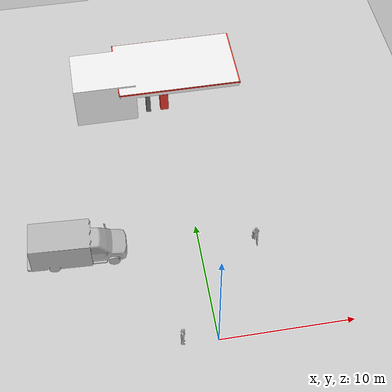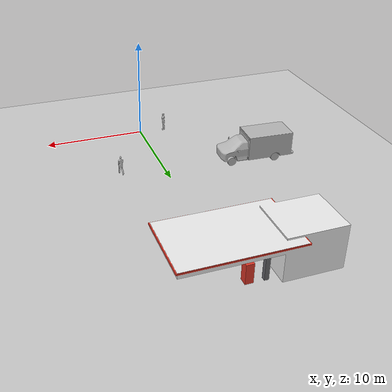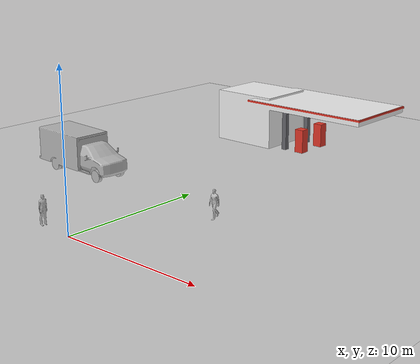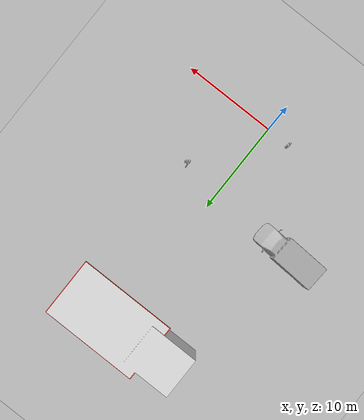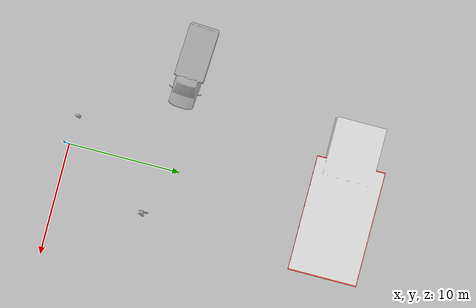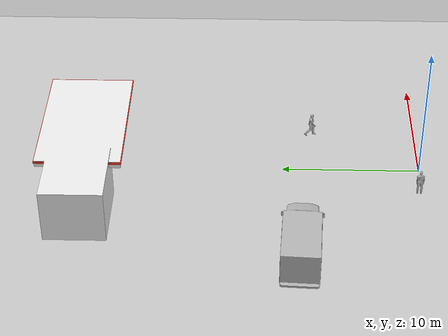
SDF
<sdf version="1.7">
 <world name="default">
  <light name="sun" type="directional">
   <pose>0 0 10 0 -0 0</pose>
   <diffuse>0.8 0.8 0.8 1</diffuse>
   <specular>0.2 0.2 0.2 1</specular>
   <attenuation>
    <range>1000</range>
    <constant>0.9</constant>
    <linear>0.01</linear>
    <quadratic>0.001</quadratic>
   </attenuation>
   <direction>-0.5 0.1 -0.9</direction>
   <spot><inner_angle>0</inner_angle><outer_angle>0</outer_angle><falloff>0</falloff></spot>
  </light>
  <model name="ground_plane">
   <static>1</static>
   <link name="link">
    <collision name="collision">
     <geometry><plane><normal>0 0 1</normal><size>100 100</size></plane></geometry>
     <surface><friction><ode><mu>100</mu><mu2>50</mu2></ode></friction></surface>
    </collision>
    <visual name="visual">
     <cast_shadows>0</cast_shadows>
     <geometry><plane><normal>0 0 1</normal><size>100 100</size></plane></geometry>
     <material>
      <script><uri>file://media/materials/scripts/gazebo.material</uri><name>Gazebo/Grey</name></script>
     </material>
    </visual>
   </link>
  </model>
  <gravity>0 0 -9.8</gravity>
  <magnetic_field>6e-06 2.3e-05 -4.2e-05</magnetic_field>
  <atmosphere type="adiabatic"/>
  <physics type="ode">
   <max_step_size>0.001</max_step_size>
   <real_time_factor>1</real_time_factor>
   <real_time_update_rate>1000</real_time_update_rate>
  </physics>
  <scene><ambient>0.4 0.4 0.4 1</ambient><background>0.7 0.7 0.7 1</background><shadows>1</shadows></scene>
  <audio><device>default</device></audio>
  <spherical_coordinates>
   <surface_model>EARTH_WGS84</surface_model>
   <latitude_deg>0</latitude_deg>
   <longitude_deg>0</longitude_deg>
   <elevation>0</elevation>
   <heading_deg>0</heading_deg>
  </spherical_coordinates>
  <model name="ambulance">
   <static>1</static>
   <link name="link">
    <collision name="collision">
     <geometry>
      <mesh><scale>0.0254 0.0254 0.0254</scale><uri>model://ambulance/meshes/ambulance.obj</uri></mesh>
     </geometry>
    </collision>
    <visual name="visual">
     <geometry>
      <mesh><scale>0.0254 0.0254 0.0254</scale><uri>model://ambulance/meshes/ambulance.obj</uri></mesh>
     </geometry>
    </visual>
   </link>
   <pose>-9.36105 8.81594 0 0 -0 1.51927</pose>
  </model>
  <model name="Gas Station">
   <static>1</static>
   <link name="link">
    <collision name="collision">
     <geometry><mesh><uri>model://gas_station/meshes/gas_station.dae</uri></mesh></geometry>
    </collision>
    <visual name="visual">
     <geometry><mesh><uri>model://gas_station/meshes/gas_station.dae</uri></mesh></geometry>
     <material>
      <script>
       <uri>model://gas_station/materials/scripts</uri>
       <uri>model://gas_station/materials/textures</uri>
       <name>GasStation/Diffuse</name>
      </script>
      <shader type="normal_map_tangent_space"><normal_map>GasStation_Normal.png</normal_map></shader>
     </material>
    </visual>
   </link>
   <pose>-1.77742 24.3166 0 0 -0 0</pose>
  </model>
  <model name="person_walking">
   <link name="link">
    <inertial>
     <pose>0 0 0.95 0 -0 0</pose>
     <mass>80</mass>
     <inertia><ixx>27.82</ixx><ixy>0</ixy><ixz>0</ixz><iyy>24.88</iyy><iyz>0</iyz><izz>4.57</izz></inertia>
    </inertial>
    <collision name="bottom">
     <pose>0 0 0.01 0 -0 0</pose>
     <geometry><box><size>0.35 0.75 0.02</size></box></geometry>
    </collision>
    <collision name="person">
     <pose>0 0 -0.02 0 -0 0</pose>
     <geometry><mesh><uri>model://person_walking/meshes/walking.dae</uri></mesh></geometry>
    </collision>
    <visual name="visual">
     <pose>0 0 -0.02 0 -0 0</pose>
     <geometry><mesh><uri>model://person_walking/meshes/walking.dae</uri></mesh></geometry>
    </visual>
   </link>
   <pose>4.26809 7.81018 -1e-06 2e-06 -1e-06 0.001143</pose>
  </model>
  <model name="person_standing">
   <link name="link">
    <inertial>
     <pose>0 -0.1 0.95 0 -0 0</pose>
     <mass>80</mass>
     <inertia><ixx>24.88</ixx><ixy>0</ixy><ixz>0</ixz><iyy>25.73</iyy><iyz>0</iyz><izz>2.48</izz></inertia>
    </inertial>
    <collision name="bottom">
     <pose>0 -0.1 0.01 0 -0 0</pose>
     <geometry><box><size>0.5 0.35 0.02</size></box></geometry>
    </collision>
    <collision name="person">
     <pose>0 0 0.02 0.04 -0 0</pose>
     <geometry><mesh><uri>model://person_standing/meshes/standing.dae</uri></mesh></geometry>
    </collision>
    <visual name="visual">
     <pose>0 0 0.02 0.04 -0 0</pose>
     <geometry><mesh><uri>model://person_standing/meshes/standing.dae</uri></mesh></geometry>
    </visual>
   </link>
   <pose>-2.6408 0.2154 -1e-06 -1e-06 -1e-06 1.45166</pose>
  </model>
 </world>
</sdf>
